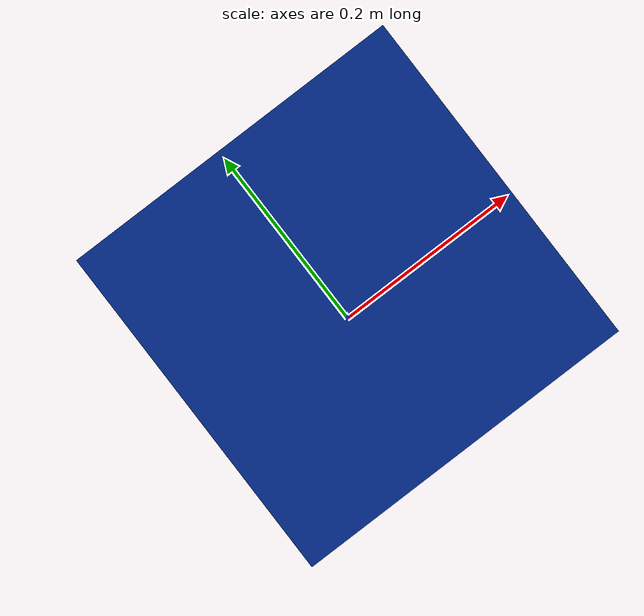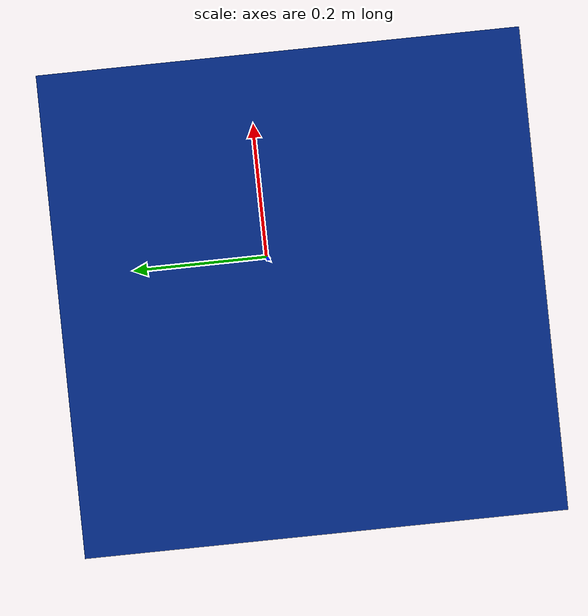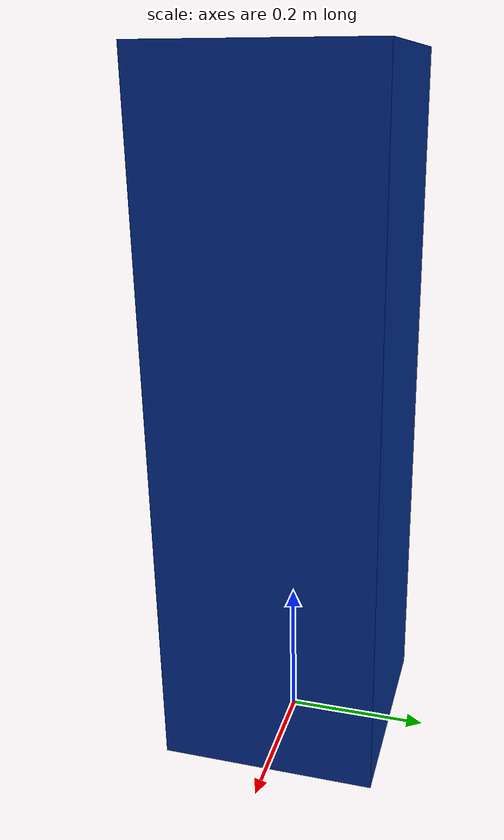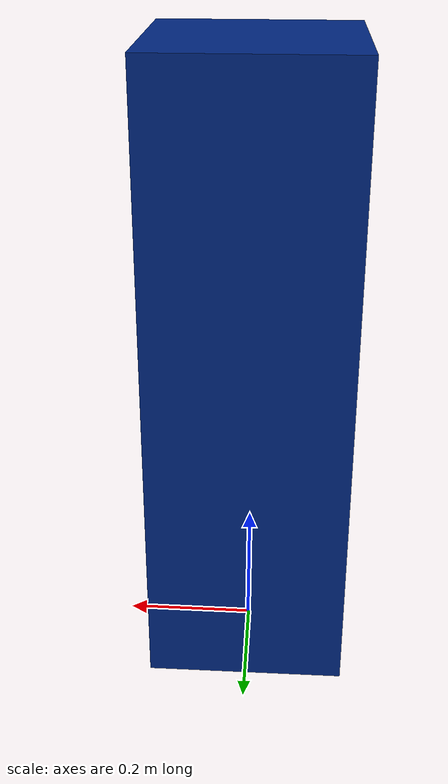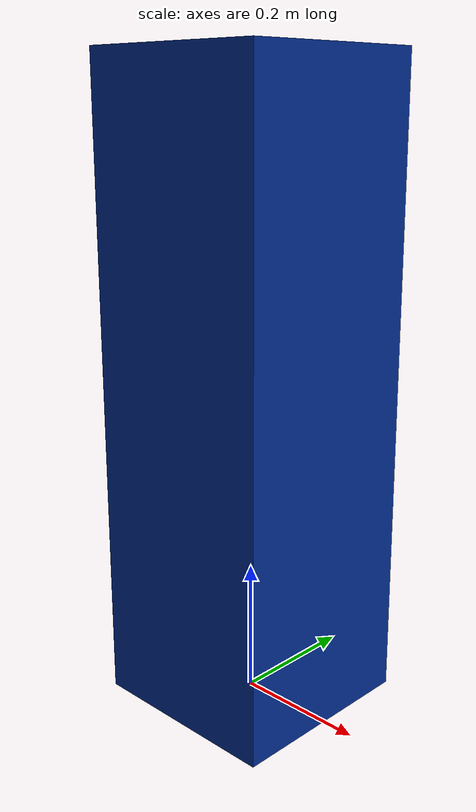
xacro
<?xml version="1.0" ?>
<robot name="robot_pedestal" xmlns:xacro="http://www.ros.org/wiki/xacro">
    <xacro:arg name="pedestal_prefix" default="robot1"/>
    <xacro:arg name="pedestal_parent" default="world_interface"/>
    <xacro:arg name="pedestal_height" default="0.95"/>

    <xacro:arg name="x" default="0"/>
    <xacro:arg name="y" default="0"/>
    <xacro:arg name="z" default="0"/>
    <xacro:arg name="R" default="0"/>
    <xacro:arg name="P" default="0"/>
    <xacro:arg name="Y" default="0"/>

    <link name="world_interface"/>
    <!-- URDF -->
    <xacro:include filename="$(find casus_support)/urdf/robot_pedestal/robot_pedestal.urdf.xacro"/>
    <xacro:robot_pedestal_urdf pedestal_prefix="$(arg pedestal_prefix)" pedestal_parent="$(arg pedestal_parent)" pedestal_height="$(arg pedestal_height)">
    <origin xyz="$(arg x) $(arg y) $(arg z)" rpy="$(arg R) $(arg P) $(arg Y)"/>
    </xacro:robot_pedestal_urdf>

    <!-- Gazebo -->
    <xacro:include filename="$(find casus_support)/urdf/robot_pedestal/robot_pedestal.gazebo.xacro"/>
    </robot>

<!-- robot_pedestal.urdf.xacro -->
<robot name="robot_pedestal_urdf" xmlns:xacro="http://www.ros.org/wiki/xacro">

    <!-- robot pedestal -->
    <xacro:macro name = "robot_pedestal_urdf" params = "pedestal_prefix pedestal_parent pedestal_height *origin">
    <joint name="${pedestal_prefix}pedestal_joint" type="fixed">
    <xacro:insert_block name="origin" />
    <parent link="${pedestal_parent}"/>
    <child link="${pedestal_prefix}pedestal_link"/>
    </joint>

    <link name="${pedestal_prefix}pedestal_link">
        <visual>
            <origin xyz="0 0 ${0.5*pedestal_height}"/>
            <geometry>
            <box size="0.3 0.3 ${pedestal_height}"/>
            </geometry>
            <material name="pedestal_color">
            <color rgba="0 ${40/255} ${134/255} 1"/>
            </material>
        </visual>

        <collision>
            <origin xyz="0 0 ${0.5*pedestal_height}"/>
            <geometry>
            <box size="0.3 0.3 ${pedestal_height}"/>
            </geometry>
        </collision>

        <inertial>
            <mass value="500"/>
            <origin xyz="0 0 0" rpy="0 0 0"/>
            <inertia ixx="0.001" ixy="0" ixz="0" iyy="0.001" iyz="0" izz="0.001"/>
            </inertial>
    </link>

    <gazebo reference="${pedestal_prefix}pedestal_link">
        <material>Gazebo/Blue</material>
    </gazebo>

    </xacro:macro>

</robot>
